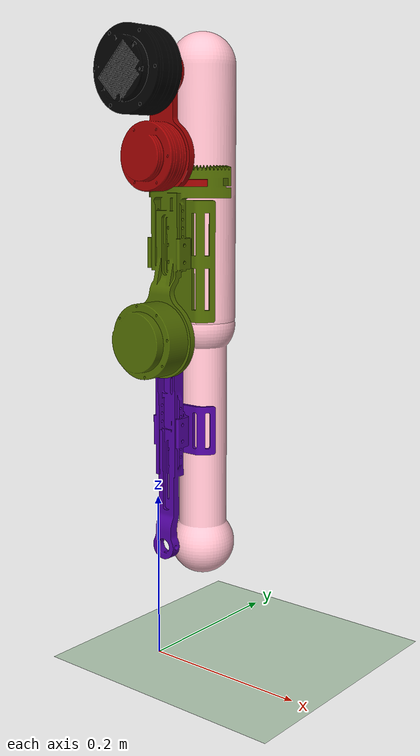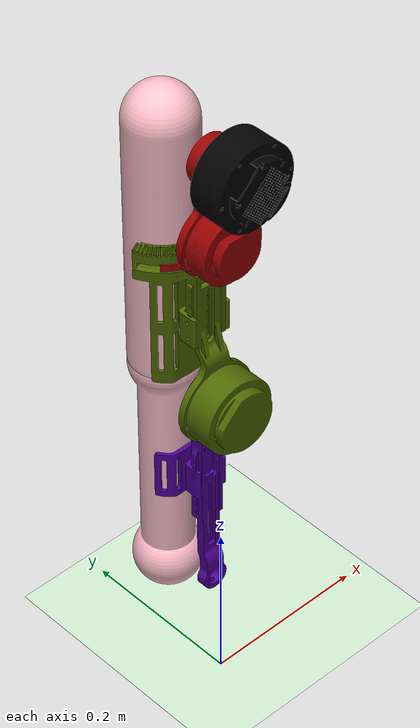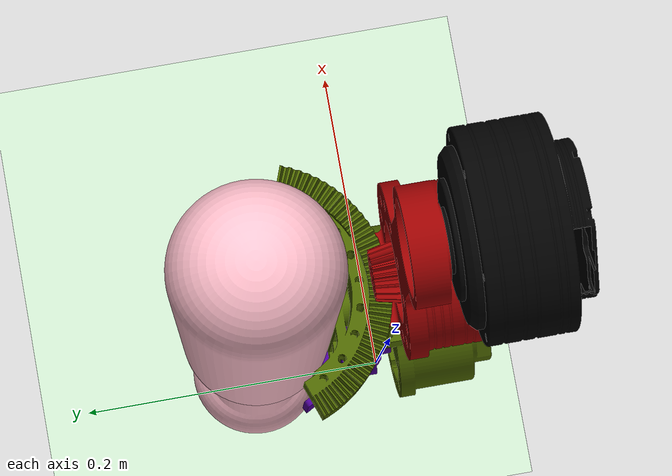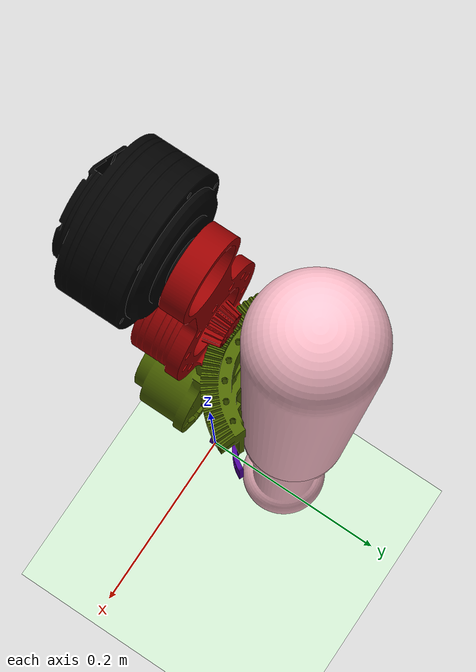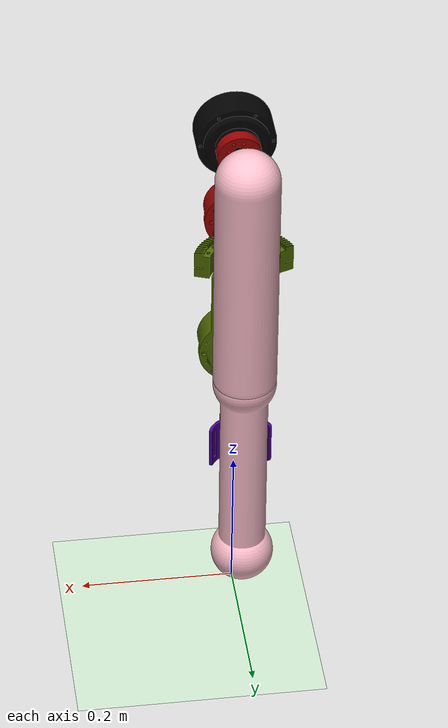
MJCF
<mujoco model="upper_limb_exo">
    <option gravity="0 0 -9.81" />
    <compiler angle="degree" meshdir="meshes/" autolimits="true" />

    <option timestep="0.001"></option>     <!-- time step for simulations  -->

    <default>
        <geom type="mesh" />
    </default>

    <default>
        <default class="visual">
            <geom contype="0" conaffinity="0" group="0" density="0" rgba="0.5 0.5 0.5 1" />
        </default>
        <default class="transparent">
            <geom contype="0" conaffinity="0" group="0" density="0" rgba="0.5 0.5 0.5 0.3" />
        </default>
    </default>

    <default>
        <default class="AK7010_actuator">
            <joint damping="0.015" armature="0.00414" frictionloss="0.5" />
        </default>

        <default class="AK109_actuator">
            <joint damping="0.03" armature="0.00812" frictionloss="0.5" />
        </default>

        <default class="AK606_actuator">
            <joint damping="0.02" armature="0.00088" frictionloss="0.25" />
        </default>
    </default>

    <!--   Fusion outputs meshes with mm units by default, but must be converted to m in MuJoCo, hence
    the scaling   -->
    <asset>
        <mesh name="link0_AK10_9" file="link0_AK10_9.stl" scale="0.001 0.001 0.001" />
        <mesh name="link1_upper_arm" file="link1_upper_arm.stl" scale="0.001 0.001 0.001" />
        <mesh name="link2_upper_arm" file="link2_upper_arm.stl" scale="0.001 0.001 0.001" />
        <mesh name="link3_lower_arm" file="link3_lower_arm.stl" scale="0.001 0.001 0.001" />
        <mesh name="dummy_upper_arm" file="dummy_upper_arm.stl" scale="0.001 0.001 0.001" />
        <mesh name="dummy_lower_arm" file="dummy_lower_arm.stl" scale="0.001 0.001 0.001" />
    </asset>
    <visual>
        <headlight diffuse="0.6 0.6 0.6" ambient="0.3 0.3 0.3" specular="0 0 0" />
        <rgba haze="0.15 0.25 0.35 1" />
        <global azimuth="-130" elevation="-20" />
    </visual>

    <asset>
        <texture builtin="gradient" height="100" rgb1=".4 .5 .6" rgb2="0 0 0" type="skybox"
            width="100" />
        <texture name="texplane" type="2d" builtin="checker" rgb1=".2 .3 .4" rgb2=".1 0.15 0.2"
            width="100" height="100" />
        <material name="MatPlane" reflectance="0.1" texture="texplane" texrepeat="1 1"
            texuniform="true" />
    </asset>

    <worldbody>
        <geom name="ground" pos="0 0 0" size="5 5 0.05" type="plane" material="MatPlane"
            friction="1 1 0.1" condim="3" conaffinity="1" contype="1" group="2" rgba="0.8 0.9 0.8 1" />

        <light cutoff="1000" diffuse="1 1 1" dir="-0 0 -1.3" directional="true" exponent="1"
            pos="0 0 1.3" specular=".1 .1 .1" castshadow="false" />

        <!--   Link0_AK10-9_motor_fixed -->
        <body name="link0_AK10_9" pos="0 0 0.7" euler="90 0 0">
            <geom type="mesh" class="visual" mesh="link0_AK10_9" rgba="0 0 0 1" />
            <inertial pos="0 0 0" mass="0.8"
                fullinertia="1.338E-5 1.019E-5 6.278E-6 0 0 0" />
            <!--   link1_upper_arm -->
            <body name="link1_upper_arm" pos="0 0 0" euler="180 0 0">
                <geom type="mesh" class="visual" mesh="link1_upper_arm" rgba="0.6 0 0 1" />
                <inertial pos="-0.008E-3 82.868E-3 0.778E-3" mass="526.976E-3"
                    fullinertia="8.079E-4 3.017E-4 9.044E-4 52.342E-9 94.758E-9 38735.363E-9" />
                    <!-- IXX, IYY, IZZ, IXY, IXZ, IYZ-->
                <joint type="hinge" name="shoulder_pitch" axis="0 0 1" pos="0 0 0" range="-150 0"
                    class="AK109_actuator" />

                <!--   link2_upper_arm -->
                <body name="link2_upper_arm" pos="0 113.23E-3 84E-3" euler="90 0 0">
                    <geom type="mesh" class="visual" mesh="link2_upper_arm" rgba="0.3 0.4 0 1" />
                    <inertial pos="-0.027E-3 -79.133E-3 -145.119E-3" mass="1.247087"
                        fullinertia="7.413E-3 7.163E-3 1.591E-3 5466.478E-9 5065.844E-9 -1.911E-3" />
                    <joint type="hinge" name="shoulder_yaw" axis="0 0 1" pos="0 0 0" range="-40 40"
                        class="AK109_actuator" />
                    <!--   dummy upper arm   complete -->
                    <body name="dummy_upper_arm" pos="0 0 -25E-3" euler="0 0 0">
                        <geom type="mesh" class="visual" mesh="dummy_upper_arm" rgba="1 0.75 0.8 1" />
                        <inertial pos="0 0 0" mass="2.488242"
                            fullinertia="2.707E-2 2.707E-2 1.931E-3 0 0 0" />
                    </body>

                    <body name="link3_lower_arm" pos="0 -74E-3 -193.727E-3" euler="90 0 -90">
                        <geom type="mesh" class="visual" mesh="link3_lower_arm" rgba="0.3 0 0.6 1"/>
                        <inertial pos="115.097E-3 0.129E-3 -16.176E-3" mass="0.309307"
                            fullinertia="1.017E-4 1.605E-3 1.619E-3 783.496E-9 -22863.499E-9 732.688E-9" />
                        <joint type="hinge" name="elbow" axis="0 0 -1" pos="0 0 0" range="-150 0"
                            class="AK109_actuator" />

                        <!--   dummy lower arm-->
                        <body name="dummy_lower_arm" pos="131.273E-3 0 -74E-3" euler="90 90 0">
                            <geom type="mesh" class="visual" mesh="dummy_lower_arm"
                                rgba="1 0.75 0.8 1" />
                            <inertial pos="-3.440E-12 0 0" mass="1.998991"
                                fullinertia="2.331E-2 2.331E-2 1.086E-3 6.394E-19 2.840E-14 0" />
                        </body>
                    </body>
                </body>
            </body>
        </body>
    </worldbody>

    <actuator>
        <motor name="shoulder_pitch_m" joint="shoulder_pitch" ctrlrange="-48 48" />
        <motor name="shoulder_yaw_m" joint="shoulder_yaw" ctrlrange="-15 15" />
        <motor name="elbow_m" joint="elbow" ctrlrange="-18 18" />
    </actuator>

</mujoco>
